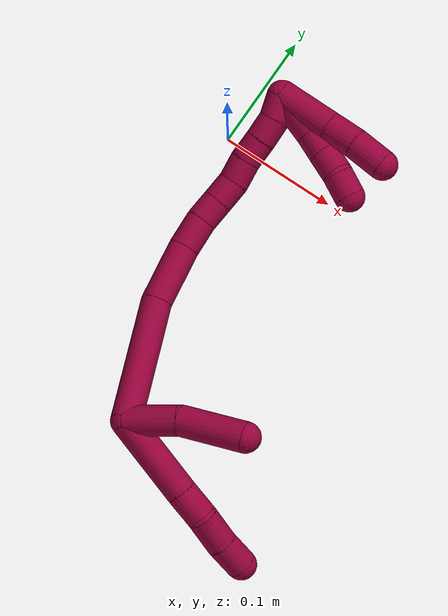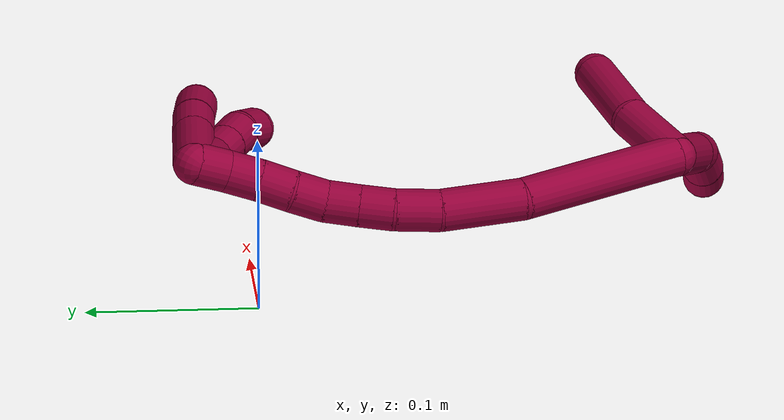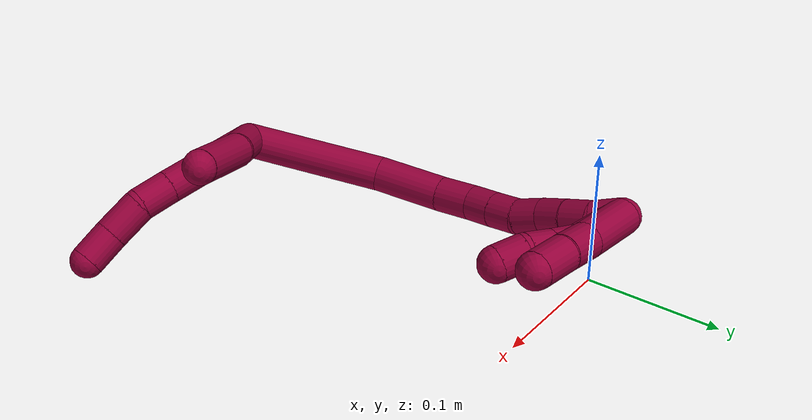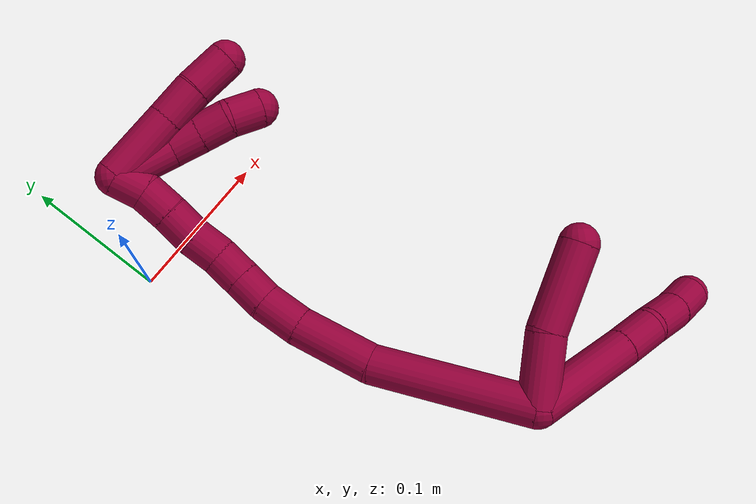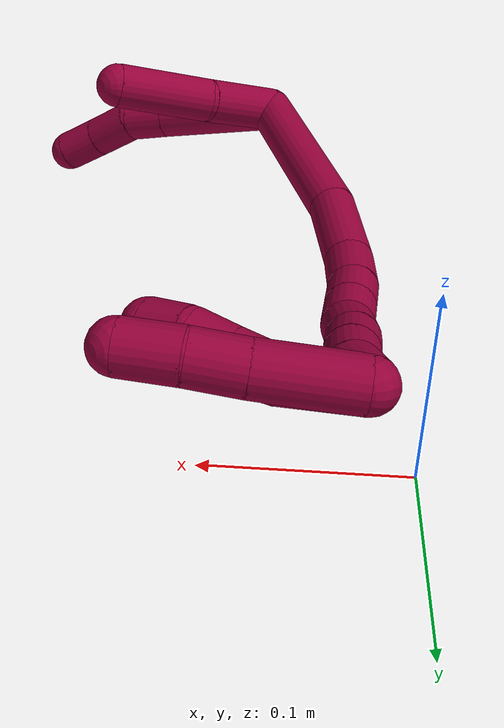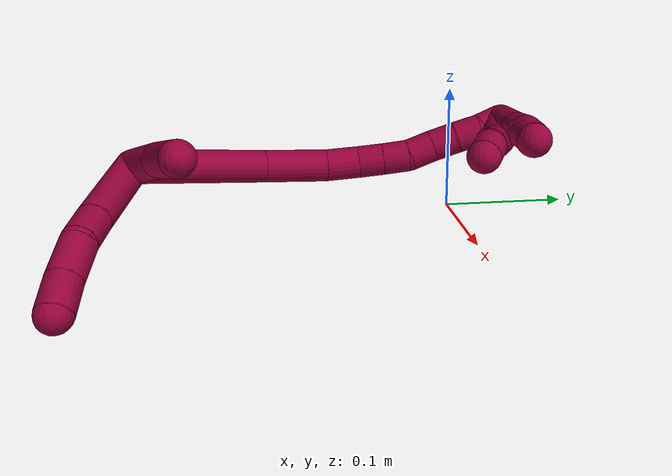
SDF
<sdf version="1.7">
 <world name="default">
  <model name="8">
   <static>0</static>
   <link name="8">
    <collision name="collision-cylinder-e_1_2_8">
     <pose>0.017869 -0.026325 0.015739 1.03195 0.527524 0.304003</pose>
     <geometry><cylinder><radius>0.0125</radius><length>0.070994</length></cylinder></geometry>
     <surface>
      <friction><ode><mu>1.16</mu><mu2>1.16</mu2><slip1>0</slip1><slip2>0</slip2></ode></friction>
      <contact><ode><kp>1e+06</kp><kd>1</kd><max_vel>0</max_vel><min_depth>0.001</min_depth></ode></contact>
     </surface>
    </collision>
    <visual name="visual-cylinder-e_1_2_8">
     <pose>0.017869 -0.026325 0.015739 1.03195 0.527524 0.304003</pose>
     <geometry><cylinder><radius>0.0125</radius><length>0.070994</length></cylinder></geometry>
     <material><ambient>0.584314 0 0.227451 1</ambient></material>
    </visual>
    <collision name="collision-cylinder-e_2_8_9">
     <pose>0.042113 -0.061699 0.037328 0.996856 0.534251 0.295719</pose>
     <geometry><cylinder><radius>0.0125</radius><length>0.025038</length></cylinder></geometry>
     <surface>
      <friction><ode><mu>1.16</mu><mu2>1.16</mu2><slip1>0</slip1><slip2>0</slip2></ode></friction>
      <contact><ode><kp>1e+06</kp><kd>1</kd><max_vel>0</max_vel><min_depth>0.001</min_depth></ode></contact>
     </surface>
    </collision>
    <visual name="visual-cylinder-e_2_8_9">
     <pose>0.042113 -0.061699 0.037328 0.996856 0.534251 0.295719</pose>
     <geometry><cylinder><radius>0.0125</radius><length>0.025038</length></cylinder></geometry>
     <material><ambient>0.584314 0 0.227451 1</ambient></material>
    </visual>
    <collision name="collision-cylinder-e_3_9_10">
     <pose>0.059436 -0.078879 0.047786 1.05525 0.864153 0.525033</pose>
     <geometry><cylinder><radius>0.0125</radius><length>0.028792</length></cylinder></geometry>
     <surface>
      <friction><ode><mu>1.16</mu><mu2>1.16</mu2><slip1>0</slip1><slip2>0</slip2></ode></friction>
      <contact><ode><kp>1e+06</kp><kd>1</kd><max_vel>0</max_vel><min_depth>0.001</min_depth></ode></contact>
     </surface>
    </collision>
    <visual name="visual-cylinder-e_3_9_10">
     <pose>0.059436 -0.078879 0.047786 1.05525 0.864153 0.525033</pose>
     <geometry><cylinder><radius>0.0125</radius><length>0.028792</length></cylinder></geometry>
     <material><ambient>0.584314 0 0.227451 1</ambient></material>
    </visual>
    <collision name="collision-cylinder-e_4_10_6">
     <pose>0.079718 -0.093622 0.057652 0.89888 0.835194 0.421682</pose>
     <geometry><cylinder><radius>0.0125</radius><length>0.025176</length></cylinder></geometry>
     <surface>
      <friction><ode><mu>1.16</mu><mu2>1.16</mu2><slip1>0</slip1><slip2>0</slip2></ode></friction>
      <contact><ode><kp>1e+06</kp><kd>1</kd><max_vel>0</max_vel><min_depth>0.001</min_depth></ode></contact>
     </surface>
    </collision>
    <visual name="visual-cylinder-e_4_10_6">
     <pose>0.079718 -0.093622 0.057652 0.89888 0.835194 0.421682</pose>
     <geometry><cylinder><radius>0.0125</radius><length>0.025176</length></cylinder></geometry>
     <material><ambient>0.584314 0 0.227451 1</ambient></material>
    </visual>
    <collision name="collision-cylinder-e_1_2_11">
     <pose>-0.001824 -0.00465 0.02188 0.209393 -0.081367 -0.008555</pose>
     <geometry><cylinder><radius>0.0125</radius><length>0.044885</length></cylinder></geometry>
     <surface>
      <friction><ode><mu>1.16</mu><mu2>1.16</mu2><slip1>0</slip1><slip2>0</slip2></ode></friction>
      <contact><ode><kp>1e+06</kp><kd>1</kd><max_vel>0</max_vel><min_depth>0.001</min_depth></ode></contact>
     </surface>
    </collision>
    <visual name="visual-cylinder-e_1_2_11">
     <pose>-0.001824 -0.00465 0.02188 0.209393 -0.081367 -0.008555</pose>
     <geometry><cylinder><radius>0.0125</radius><length>0.044885</length></cylinder></geometry>
     <material><ambient>0.584314 0 0.227451 1</ambient></material>
    </visual>
    <collision name="collision-cylinder-e_2_11_5">
     <pose>-0.003314 -0.021008 0.068704 0.438853 0.012132 0.002706</pose>
     <geometry><cylinder><radius>0.0125</radius><length>0.055115</length></cylinder></geometry>
     <surface>
      <friction><ode><mu>1.16</mu><mu2>1.16</mu2><slip1>0</slip1><slip2>0</slip2></ode></friction>
      <contact><ode><kp>1e+06</kp><kd>1</kd><max_vel>0</max_vel><min_depth>0.001</min_depth></ode></contact>
     </surface>
    </collision>
    <visual name="visual-cylinder-e_2_11_5">
     <pose>-0.003314 -0.021008 0.068704 0.438853 0.012132 0.002706</pose>
     <geometry><cylinder><radius>0.0125</radius><length>0.055115</length></cylinder></geometry>
     <material><ambient>0.584314 0 0.227451 1</ambient></material>
    </visual>
    <collision name="collision-cylinder-e_1_2_12">
     <pose>-0.000186 0.048476 0.016321 -1.24603 -0.003628 0.002606</pose>
     <geometry><cylinder><radius>0.0125</radius><length>0.102301</length></cylinder></geometry>
     <surface>
      <friction><ode><mu>1.16</mu><mu2>1.16</mu2><slip1>0</slip1><slip2>0</slip2></ode></friction>
      <contact><ode><kp>1e+06</kp><kd>1</kd><max_vel>0</max_vel><min_depth>0.001</min_depth></ode></contact>
     </surface>
    </collision>
    <visual name="visual-cylinder-e_1_2_12">
     <pose>-0.000186 0.048476 0.016321 -1.24603 -0.003628 0.002606</pose>
     <geometry><cylinder><radius>0.0125</radius><length>0.102301</length></cylinder></geometry>
     <material><ambient>0.584314 0 0.227451 1</ambient></material>
    </visual>
    <collision name="collision-cylinder-e_2_12_13">
     <pose>-0.000556 0.11829 0.045721 -1.02093 -0.007404 0.004146</pose>
     <geometry><cylinder><radius>0.0125</radius><length>0.050054</length></cylinder></geometry>
     <surface>
      <friction><ode><mu>1.16</mu><mu2>1.16</mu2><slip1>0</slip1><slip2>0</slip2></ode></friction>
      <contact><ode><kp>1e+06</kp><kd>1</kd><max_vel>0</max_vel><min_depth>0.001</min_depth></ode></contact>
     </surface>
    </collision>
    <visual name="visual-cylinder-e_2_12_13">
     <pose>-0.000556 0.11829 0.045721 -1.02093 -0.007404 0.004146</pose>
     <geometry><cylinder><radius>0.0125</radius><length>0.050054</length></cylinder></geometry>
     <material><ambient>0.584314 0 0.227451 1</ambient></material>
    </visual>
    <collision name="collision-cylinder-e_3_13_14">
     <pose>-0.002008 0.149856 0.06731 -0.876796 -0.094844 0.044491</pose>
     <geometry><cylinder><radius>0.0125</radius><length>0.026732</length></cylinder></geometry>
     <surface>
      <friction><ode><mu>1.16</mu><mu2>1.16</mu2><slip1>0</slip1><slip2>0</slip2></ode></friction>
      <contact><ode><kp>1e+06</kp><kd>1</kd><max_vel>0</max_vel><min_depth>0.001</min_depth></ode></contact>
     </surface>
    </collision>
    <visual name="visual-cylinder-e_3_13_14">
     <pose>-0.002008 0.149856 0.06731 -0.876796 -0.094844 0.044491</pose>
     <geometry><cylinder><radius>0.0125</radius><length>0.026732</length></cylinder></geometry>
     <material><ambient>0.584314 0 0.227451 1</ambient></material>
    </visual>
    <collision name="collision-cylinder-e_4_14_15">
     <pose>-0.004367 0.166642 0.083361 -0.715782 -0.109011 0.040804</pose>
     <geometry><cylinder><radius>0.0125</radius><length>0.020104</length></cylinder></geometry>
     <surface>
      <friction><ode><mu>1.16</mu><mu2>1.16</mu2><slip1>0</slip1><slip2>0</slip2></ode></friction>
      <contact><ode><kp>1e+06</kp><kd>1</kd><max_vel>0</max_vel><min_depth>0.001</min_depth></ode></contact>
     </surface>
    </collision>
    <visual name="visual-cylinder-e_4_14_15">
     <pose>-0.004367 0.166642 0.083361 -0.715782 -0.109011 0.040804</pose>
     <geometry><cylinder><radius>0.0125</radius><length>0.020104</length></cylinder></geometry>
     <material><ambient>0.584314 0 0.227451 1</ambient></material>
    </visual>
    <collision name="collision-cylinder-e_5_15_16">
     <pose>-0.006788 0.179807 0.098542 -0.713012 -0.130674 0.048725</pose>
     <geometry><cylinder><radius>0.0125</radius><length>0.020378</length></cylinder></geometry>
     <surface>
      <friction><ode><mu>1.16</mu><mu2>1.16</mu2><slip1>0</slip1><slip2>0</slip2></ode></friction>
      <contact><ode><kp>1e+06</kp><kd>1</kd><max_vel>0</max_vel><min_depth>0.001</min_depth></ode></contact>
     </surface>
    </collision>
    <visual name="visual-cylinder-e_5_15_16">
     <pose>-0.006788 0.179807 0.098542 -0.713012 -0.130674 0.048725</pose>
     <geometry><cylinder><radius>0.0125</radius><length>0.020378</length></cylinder></geometry>
     <material><ambient>0.584314 0 0.227451 1</ambient></material>
    </visual>
    <collision name="collision-cylinder-e_6_16_17">
     <pose>-0.011859 0.19331 0.112679 -0.815188 -0.376261 0.164035</pose>
     <geometry><cylinder><radius>0.0125</radius><length>0.020371</length></cylinder></geometry>
     <surface>
      <friction><ode><mu>1.16</mu><mu2>1.16</mu2><slip1>0</slip1><slip2>0</slip2></ode></friction>
      <contact><ode><kp>1e+06</kp><kd>1</kd><max_vel>0</max_vel><min_depth>0.001</min_depth></ode></contact>
     </surface>
    </collision>
    <visual name="visual-cylinder-e_6_16_17">
     <pose>-0.011859 0.19331 0.112679 -0.815188 -0.376261 0.164035</pose>
     <geometry><cylinder><radius>0.0125</radius><length>0.020371</length></cylinder></geometry>
     <material><ambient>0.584314 0 0.227451 1</ambient></material>
    </visual>
    <collision name="collision-cylinder-e_7_17_18">
     <pose>-0.018819 0.20609 0.126601 -0.670213 -0.327375 0.114908</pose>
     <geometry><cylinder><radius>0.0125</radius><length>0.020013</length></cylinder></geometry>
     <surface>
      <friction><ode><mu>1.16</mu><mu2>1.16</mu2><slip1>0</slip1><slip2>0</slip2></ode></friction>
      <contact><ode><kp>1e+06</kp><kd>1</kd><max_vel>0</max_vel><min_depth>0.001</min_depth></ode></contact>
     </surface>
    </collision>
    <visual name="visual-cylinder-e_7_17_18">
     <pose>-0.018819 0.20609 0.126601 -0.670213 -0.327375 0.114908</pose>
     <geometry><cylinder><radius>0.0125</radius><length>0.020013</length></cylinder></geometry>
     <material><ambient>0.584314 0 0.227451 1</ambient></material>
    </visual>
    <collision name="collision-cylinder-e_8_18_19">
     <pose>-0.025081 0.218397 0.141077 -0.738731 -0.308984 0.120433</pose>
     <geometry><cylinder><radius>0.0125</radius><length>0.02002</length></cylinder></geometry>
     <surface>
      <friction><ode><mu>1.16</mu><mu2>1.16</mu2><slip1>0</slip1><slip2>0</slip2></ode></friction>
      <contact><ode><kp>1e+06</kp><kd>1</kd><max_vel>0</max_vel><min_depth>0.001</min_depth></ode></contact>
     </surface>
    </collision>
    <visual name="visual-cylinder-e_8_18_19">
     <pose>-0.025081 0.218397 0.141077 -0.738731 -0.308984 0.120433</pose>
     <geometry><cylinder><radius>0.0125</radius><length>0.02002</length></cylinder></geometry>
     <material><ambient>0.584314 0 0.227451 1</ambient></material>
    </visual>
    <collision name="collision-cylinder-e_9_19_1">
     <pose>-0.032114 0.232581 0.153032 -1.00727 -0.409793 0.228029</pose>
     <geometry><cylinder><radius>0.0125</radius><length>0.020025</length></cylinder></geometry>
     <surface>
      <friction><ode><mu>1.16</mu><mu2>1.16</mu2><slip1>0</slip1><slip2>0</slip2></ode></friction>
      <contact><ode><kp>1e+06</kp><kd>1</kd><max_vel>0</max_vel><min_depth>0.001</min_depth></ode></contact>
     </surface>
    </collision>
    <visual name="visual-cylinder-e_9_19_1">
     <pose>-0.032114 0.232581 0.153032 -1.00727 -0.409793 0.228029</pose>
     <geometry><cylinder><radius>0.0125</radius><length>0.020025</length></cylinder></geometry>
     <material><ambient>0.584314 0 0.227451 1</ambient></material>
    </visual>
    <collision name="collision-cylinder-e_1_1_20">
     <pose>-0.031303 0.224789 0.174727 0.747314 0.20673 0.081299</pose>
     <geometry><cylinder><radius>0.0125</radius><length>0.046772</length></cylinder></geometry>
     <surface>
      <friction><ode><mu>1.16</mu><mu2>1.16</mu2><slip1>0</slip1><slip2>0</slip2></ode></friction>
      <contact><ode><kp>1e+06</kp><kd>1</kd><max_vel>0</max_vel><min_depth>0.001</min_depth></ode></contact>
     </surface>
    </collision>
    <visual name="visual-cylinder-e_1_1_20">
     <pose>-0.031303 0.224789 0.174727 0.747314 0.20673 0.081299</pose>
     <geometry><cylinder><radius>0.0125</radius><length>0.046772</length></cylinder></geometry>
     <material><ambient>0.584314 0 0.227451 1</ambient></material>
    </visual>
    <collision name="collision-cylinder-e_2_20_21">
     <pose>-0.024484 0.200546 0.200629 0.761415 0.159011 0.063754</pose>
     <geometry><cylinder><radius>0.0125</radius><length>0.025503</length></cylinder></geometry>
     <surface>
      <friction><ode><mu>1.16</mu><mu2>1.16</mu2><slip1>0</slip1><slip2>0</slip2></ode></friction>
      <contact><ode><kp>1e+06</kp><kd>1</kd><max_vel>0</max_vel><min_depth>0.001</min_depth></ode></contact>
     </surface>
    </collision>
    <visual name="visual-cylinder-e_2_20_21">
     <pose>-0.024484 0.200546 0.200629 0.761415 0.159011 0.063754</pose>
     <geometry><cylinder><radius>0.0125</radius><length>0.025503</length></cylinder></geometry>
     <material><ambient>0.584314 0 0.227451 1</ambient></material>
    </visual>
    <collision name="collision-cylinder-e_3_21_4">
     <pose>-0.018909 0.182049 0.21887 0.82143 0.259377 0.11347</pose>
     <geometry><cylinder><radius>0.0125</radius><length>0.027726</length></cylinder></geometry>
     <surface>
      <friction><ode><mu>1.16</mu><mu2>1.16</mu2><slip1>0</slip1><slip2>0</slip2></ode></friction>
      <contact><ode><kp>1e+06</kp><kd>1</kd><max_vel>0</max_vel><min_depth>0.001</min_depth></ode></contact>
     </surface>
    </collision>
    <visual name="visual-cylinder-e_3_21_4">
     <pose>-0.018909 0.182049 0.21887 0.82143 0.259377 0.11347</pose>
     <geometry><cylinder><radius>0.0125</radius><length>0.027726</length></cylinder></geometry>
     <material><ambient>0.584314 0 0.227451 1</ambient></material>
    </visual>
    <collision name="collision-cylinder-e_1_1_22">
     <pose>-0.02754 0.225357 0.166496 1.05196 0.460563 0.270536</pose>
     <geometry><cylinder><radius>0.0125</radius><length>0.038533</length></cylinder></geometry>
     <surface>
      <friction><ode><mu>1.16</mu><mu2>1.16</mu2><slip1>0</slip1><slip2>0</slip2></ode></friction>
      <contact><ode><kp>1e+06</kp><kd>1</kd><max_vel>0</max_vel><min_depth>0.001</min_depth></ode></contact>
     </surface>
    </collision>
    <visual name="visual-cylinder-e_1_1_22">
     <pose>-0.02754 0.225357 0.166496 1.05196 0.460563 0.270536</pose>
     <geometry><cylinder><radius>0.0125</radius><length>0.038533</length></cylinder></geometry>
     <material><ambient>0.584314 0 0.227451 1</ambient></material>
    </visual>
    <collision name="collision-cylinder-e_2_22_23">
     <pose>-0.017307 0.200912 0.179127 1.16417 0.160774 0.105943</pose>
     <geometry><cylinder><radius>0.0125</radius><length>0.020863</length></cylinder></geometry>
     <surface>
      <friction><ode><mu>1.16</mu><mu2>1.16</mu2><slip1>0</slip1><slip2>0</slip2></ode></friction>
      <contact><ode><kp>1e+06</kp><kd>1</kd><max_vel>0</max_vel><min_depth>0.001</min_depth></ode></contact>
     </surface>
    </collision>
    <visual name="visual-cylinder-e_2_22_23">
     <pose>-0.017307 0.200912 0.179127 1.16417 0.160774 0.105943</pose>
     <geometry><cylinder><radius>0.0125</radius><length>0.020863</length></cylinder></geometry>
     <material><ambient>0.584314 0 0.227451 1</ambient></material>
    </visual>
    <collision name="collision-cylinder-e_3_23_24">
     <pose>-0.014353 0.182287 0.187172 1.16193 0.127844 0.084001</pose>
     <geometry><cylinder><radius>0.0125</radius><length>0.020149</length></cylinder></geometry>
     <surface>
      <friction><ode><mu>1.16</mu><mu2>1.16</mu2><slip1>0</slip1><slip2>0</slip2></ode></friction>
      <contact><ode><kp>1e+06</kp><kd>1</kd><max_vel>0</max_vel><min_depth>0.001</min_depth></ode></contact>
     </surface>
    </collision>
    <visual name="visual-cylinder-e_3_23_24">
     <pose>-0.014353 0.182287 0.187172 1.16193 0.127844 0.084001</pose>
     <geometry><cylinder><radius>0.0125</radius><length>0.020149</length></cylinder></geometry>
     <material><ambient>0.584314 0 0.227451 1</ambient></material>
    </visual>
    <collision name="collision-cylinder-e_4_24_3">
     <pose>-0.008791 0.164367 0.194265 1.22834 0.431428 0.306603</pose>
     <geometry><cylinder><radius>0.0125</radius><length>0.020455</length></cylinder></geometry>
     <surface>
      <friction><ode><mu>1.16</mu><mu2>1.16</mu2><slip1>0</slip1><slip2>0</slip2></ode></friction>
      <contact><ode><kp>1e+06</kp><kd>1</kd><max_vel>0</max_vel><min_depth>0.001</min_depth></ode></contact>
     </surface>
    </collision>
    <visual name="visual-cylinder-e_4_24_3">
     <pose>-0.008791 0.164367 0.194265 1.22834 0.431428 0.306603</pose>
     <geometry><cylinder><radius>0.0125</radius><length>0.020455</length></cylinder></geometry>
     <material><ambient>0.584314 0 0.227451 1</ambient></material>
    </visual>
    <collision name="collision-sphere-3">
     <pose>-0.004514 0.155616 0.197384 0 -0 0</pose>
     <geometry><sphere><radius>0.0125</radius></sphere></geometry>
     <surface>
      <friction><ode><mu>1.16</mu><mu2>1.16</mu2><slip1>0</slip1><slip2>0</slip2></ode></friction>
      <contact><ode><kp>1e+06</kp><kd>1</kd><max_vel>0</max_vel><min_depth>0.001</min_depth></ode></contact>
     </surface>
    </collision>
    <visual name="visual-sphere-3">
     <pose>-0.004514 0.155616 0.197384 0 -0 0</pose>
     <geometry><sphere><radius>0.0125</radius></sphere></geometry>
     <material><ambient>0.584314 0 0.227451 1</ambient></material>
    </visual>
    <collision name="collision-sphere-24">
     <pose>-0.013068 0.173118 0.191145 0 -0 0</pose>
     <geometry><sphere><radius>0.0125</radius></sphere></geometry>
     <surface>
      <friction><ode><mu>1.16</mu><mu2>1.16</mu2><slip1>0</slip1><slip2>0</slip2></ode></friction>
      <contact><ode><kp>1e+06</kp><kd>1</kd><max_vel>0</max_vel><min_depth>0.001</min_depth></ode></contact>
     </surface>
    </collision>
    <visual name="visual-sphere-24">
     <pose>-0.013068 0.173118 0.191145 0 -0 0</pose>
     <geometry><sphere><radius>0.0125</radius></sphere></geometry>
     <material><ambient>0.584314 0 0.227451 1</ambient></material>
    </visual>
    <collision name="collision-sphere-23">
     <pose>-0.015637 0.191455 0.1832 0 -0 0</pose>
     <geometry><sphere><radius>0.0125</radius></sphere></geometry>
     <surface>
      <friction><ode><mu>1.16</mu><mu2>1.16</mu2><slip1>0</slip1><slip2>0</slip2></ode></friction>
      <contact><ode><kp>1e+06</kp><kd>1</kd><max_vel>0</max_vel><min_depth>0.001</min_depth></ode></contact>
     </surface>
    </collision>
    <visual name="visual-sphere-23">
     <pose>-0.015637 0.191455 0.1832 0 -0 0</pose>
     <geometry><sphere><radius>0.0125</radius></sphere></geometry>
     <material><ambient>0.584314 0 0.227451 1</ambient></material>
    </visual>
    <collision name="collision-sphere-22">
     <pose>-0.018977 0.21037 0.175055 0 -0 0</pose>
     <geometry><sphere><radius>0.0125</radius></sphere></geometry>
     <surface>
      <friction><ode><mu>1.16</mu><mu2>1.16</mu2><slip1>0</slip1><slip2>0</slip2></ode></friction>
      <contact><ode><kp>1e+06</kp><kd>1</kd><max_vel>0</max_vel><min_depth>0.001</min_depth></ode></contact>
     </surface>
    </collision>
    <visual name="visual-sphere-22">
     <pose>-0.018977 0.21037 0.175055 0 -0 0</pose>
     <geometry><sphere><radius>0.0125</radius></sphere></geometry>
     <material><ambient>0.584314 0 0.227451 1</ambient></material>
    </visual>
    <collision name="collision-sphere-4">
     <pose>-0.015353 0.172239 0.227997 0 -0 0</pose>
     <geometry><sphere><radius>0.0125</radius></sphere></geometry>
     <surface>
      <friction><ode><mu>1.16</mu><mu2>1.16</mu2><slip1>0</slip1><slip2>0</slip2></ode></friction>
      <contact><ode><kp>1e+06</kp><kd>1</kd><max_vel>0</max_vel><min_depth>0.001</min_depth></ode></contact>
     </surface>
    </collision>
    <visual name="visual-sphere-4">
     <pose>-0.015353 0.172239 0.227997 0 -0 0</pose>
     <geometry><sphere><radius>0.0125</radius></sphere></geometry>
     <material><ambient>0.584314 0 0.227451 1</ambient></material>
    </visual>
    <collision name="collision-sphere-21">
     <pose>-0.022464 0.191859 0.209743 0 -0 0</pose>
     <geometry><sphere><radius>0.0125</radius></sphere></geometry>
     <surface>
      <friction><ode><mu>1.16</mu><mu2>1.16</mu2><slip1>0</slip1><slip2>0</slip2></ode></friction>
      <contact><ode><kp>1e+06</kp><kd>1</kd><max_vel>0</max_vel><min_depth>0.001</min_depth></ode></contact>
     </surface>
    </collision>
    <visual name="visual-sphere-21">
     <pose>-0.022464 0.191859 0.209743 0 -0 0</pose>
     <geometry><sphere><radius>0.0125</radius></sphere></geometry>
     <material><ambient>0.584314 0 0.227451 1</ambient></material>
    </visual>
    <collision name="collision-sphere-20">
     <pose>-0.026503 0.209232 0.191515 0 -0 0</pose>
     <geometry><sphere><radius>0.0125</radius></sphere></geometry>
     <surface>
      <friction><ode><mu>1.16</mu><mu2>1.16</mu2><slip1>0</slip1><slip2>0</slip2></ode></friction>
      <contact><ode><kp>1e+06</kp><kd>1</kd><max_vel>0</max_vel><min_depth>0.001</min_depth></ode></contact>
     </surface>
    </collision>
    <visual name="visual-sphere-20">
     <pose>-0.026503 0.209232 0.191515 0 -0 0</pose>
     <geometry><sphere><radius>0.0125</radius></sphere></geometry>
     <material><ambient>0.584314 0 0.227451 1</ambient></material>
    </visual>
    <collision name="collision-sphere-11">
     <pose>-0.003648 -0.009299 0.04376 0 -0 0</pose>
     <geometry><sphere><radius>0.0125</radius></sphere></geometry>
     <surface>
      <friction><ode><mu>1.16</mu><mu2>1.16</mu2><slip1>0</slip1><slip2>0</slip2></ode></friction>
      <contact><ode><kp>1e+06</kp><kd>1</kd><max_vel>0</max_vel><min_depth>0.001</min_depth></ode></contact>
     </surface>
    </collision>
    <visual name="visual-sphere-11">
     <pose>-0.003648 -0.009299 0.04376 0 -0 0</pose>
     <geometry><sphere><radius>0.0125</radius></sphere></geometry>
     <material><ambient>0.584314 0 0.227451 1</ambient></material>
    </visual>
    <collision name="collision-sphere-6">
     <pose>0.089051 -0.100233 0.06291 0 -0 0</pose>
     <geometry><sphere><radius>0.0125</radius></sphere></geometry>
     <surface>
      <friction><ode><mu>1.16</mu><mu2>1.16</mu2><slip1>0</slip1><slip2>0</slip2></ode></friction>
      <contact><ode><kp>1e+06</kp><kd>1</kd><max_vel>0</max_vel><min_depth>0.001</min_depth></ode></contact>
     </surface>
    </collision>
    <visual name="visual-sphere-6">
     <pose>0.089051 -0.100233 0.06291 0 -0 0</pose>
     <geometry><sphere><radius>0.0125</radius></sphere></geometry>
     <material><ambient>0.584314 0 0.227451 1</ambient></material>
    </visual>
    <collision name="collision-sphere-10">
     <pose>0.070385 -0.087011 0.052394 0 -0 0</pose>
     <geometry><sphere><radius>0.0125</radius></sphere></geometry>
     <surface>
      <friction><ode><mu>1.16</mu><mu2>1.16</mu2><slip1>0</slip1><slip2>0</slip2></ode></friction>
      <contact><ode><kp>1e+06</kp><kd>1</kd><max_vel>0</max_vel><min_depth>0.001</min_depth></ode></contact>
     </surface>
    </collision>
    <visual name="visual-sphere-10">
     <pose>0.070385 -0.087011 0.052394 0 -0 0</pose>
     <geometry><sphere><radius>0.0125</radius></sphere></geometry>
     <material><ambient>0.584314 0 0.227451 1</ambient></material>
    </visual>
    <collision name="collision-sphere-9">
     <pose>0.048487 -0.070747 0.043178 0 -0 0</pose>
     <geometry><sphere><radius>0.0125</radius></sphere></geometry>
     <surface>
      <friction><ode><mu>1.16</mu><mu2>1.16</mu2><slip1>0</slip1><slip2>0</slip2></ode></friction>
      <contact><ode><kp>1e+06</kp><kd>1</kd><max_vel>0</max_vel><min_depth>0.001</min_depth></ode></contact>
     </surface>
    </collision>
    <visual name="visual-sphere-9">
     <pose>0.048487 -0.070747 0.043178 0 -0 0</pose>
     <geometry><sphere><radius>0.0125</radius></sphere></geometry>
     <material><ambient>0.584314 0 0.227451 1</ambient></material>
    </visual>
    <collision name="collision-sphere-2">
     <geometry><sphere><radius>0.0125</radius></sphere></geometry>
     <surface>
      <friction><ode><mu>1.16</mu><mu2>1.16</mu2><slip1>0</slip1><slip2>0</slip2></ode></friction>
      <contact><ode><kp>1e+06</kp><kd>1</kd><max_vel>0</max_vel><min_depth>0.001</min_depth></ode></contact>
     </surface>
    </collision>
    <visual name="visual-sphere-2">
     <geometry><sphere><radius>0.0125</radius></sphere></geometry>
     <material><ambient>0.584314 0 0.227451 1</ambient></material>
    </visual>
    <collision name="collision-sphere-19">
     <pose>-0.028125 0.224818 0.148127 0 -0 0</pose>
     <geometry><sphere><radius>0.0125</radius></sphere></geometry>
     <surface>
      <friction><ode><mu>1.16</mu><mu2>1.16</mu2><slip1>0</slip1><slip2>0</slip2></ode></friction>
      <contact><ode><kp>1e+06</kp><kd>1</kd><max_vel>0</max_vel><min_depth>0.001</min_depth></ode></contact>
     </surface>
    </collision>
    <visual name="visual-sphere-19">
     <pose>-0.028125 0.224818 0.148127 0 -0 0</pose>
     <geometry><sphere><radius>0.0125</radius></sphere></geometry>
     <material><ambient>0.584314 0 0.227451 1</ambient></material>
    </visual>
    <collision name="collision-sphere-8">
     <pose>0.035738 -0.052651 0.031478 0 -0 0</pose>
     <geometry><sphere><radius>0.0125</radius></sphere></geometry>
     <surface>
      <friction><ode><mu>1.16</mu><mu2>1.16</mu2><slip1>0</slip1><slip2>0</slip2></ode></friction>
      <contact><ode><kp>1e+06</kp><kd>1</kd><max_vel>0</max_vel><min_depth>0.001</min_depth></ode></contact>
     </surface>
    </collision>
    <visual name="visual-sphere-8">
     <pose>0.035738 -0.052651 0.031478 0 -0 0</pose>
     <geometry><sphere><radius>0.0125</radius></sphere></geometry>
     <material><ambient>0.584314 0 0.227451 1</ambient></material>
    </visual>
    <collision name="collision-sphere-5">
     <pose>-0.002979 -0.032716 0.093648 0 -0 0</pose>
     <geometry><sphere><radius>0.0125</radius></sphere></geometry>
     <surface>
      <friction><ode><mu>1.16</mu><mu2>1.16</mu2><slip1>0</slip1><slip2>0</slip2></ode></friction>
      <contact><ode><kp>1e+06</kp><kd>1</kd><max_vel>0</max_vel><min_depth>0.001</min_depth></ode></contact>
     </surface>
    </collision>
    <visual name="visual-sphere-5">
     <pose>-0.002979 -0.032716 0.093648 0 -0 0</pose>
     <geometry><sphere><radius>0.0125</radius></sphere></geometry>
     <material><ambient>0.584314 0 0.227451 1</ambient></material>
    </visual>
    <collision name="collision-sphere-12">
     <pose>-0.000371 0.096953 0.032642 0 -0 0</pose>
     <geometry><sphere><radius>0.0125</radius></sphere></geometry>
     <surface>
      <friction><ode><mu>1.16</mu><mu2>1.16</mu2><slip1>0</slip1><slip2>0</slip2></ode></friction>
      <contact><ode><kp>1e+06</kp><kd>1</kd><max_vel>0</max_vel><min_depth>0.001</min_depth></ode></contact>
     </surface>
    </collision>
    <visual name="visual-sphere-12">
     <pose>-0.000371 0.096953 0.032642 0 -0 0</pose>
     <geometry><sphere><radius>0.0125</radius></sphere></geometry>
     <material><ambient>0.584314 0 0.227451 1</ambient></material>
    </visual>
    <collision name="collision-sphere-13">
     <pose>-0.000742 0.139628 0.058799 0 -0 0</pose>
     <geometry><sphere><radius>0.0125</radius></sphere></geometry>
     <surface>
      <friction><ode><mu>1.16</mu><mu2>1.16</mu2><slip1>0</slip1><slip2>0</slip2></ode></friction>
      <contact><ode><kp>1e+06</kp><kd>1</kd><max_vel>0</max_vel><min_depth>0.001</min_depth></ode></contact>
     </surface>
    </collision>
    <visual name="visual-sphere-13">
     <pose>-0.000742 0.139628 0.058799 0 -0 0</pose>
     <geometry><sphere><radius>0.0125</radius></sphere></geometry>
     <material><ambient>0.584314 0 0.227451 1</ambient></material>
    </visual>
    <collision name="collision-sphere-14">
     <pose>-0.003273 0.160084 0.07582 0 -0 0</pose>
     <geometry><sphere><radius>0.0125</radius></sphere></geometry>
     <surface>
      <friction><ode><mu>1.16</mu><mu2>1.16</mu2><slip1>0</slip1><slip2>0</slip2></ode></friction>
      <contact><ode><kp>1e+06</kp><kd>1</kd><max_vel>0</max_vel><min_depth>0.001</min_depth></ode></contact>
     </surface>
    </collision>
    <visual name="visual-sphere-14">
     <pose>-0.003273 0.160084 0.07582 0 -0 0</pose>
     <geometry><sphere><radius>0.0125</radius></sphere></geometry>
     <material><ambient>0.584314 0 0.227451 1</ambient></material>
    </visual>
    <collision name="collision-sphere-15">
     <pose>-0.005461 0.173199 0.090901 0 -0 0</pose>
     <geometry><sphere><radius>0.0125</radius></sphere></geometry>
     <surface>
      <friction><ode><mu>1.16</mu><mu2>1.16</mu2><slip1>0</slip1><slip2>0</slip2></ode></friction>
      <contact><ode><kp>1e+06</kp><kd>1</kd><max_vel>0</max_vel><min_depth>0.001</min_depth></ode></contact>
     </surface>
    </collision>
    <visual name="visual-sphere-15">
     <pose>-0.005461 0.173199 0.090901 0 -0 0</pose>
     <geometry><sphere><radius>0.0125</radius></sphere></geometry>
     <material><ambient>0.584314 0 0.227451 1</ambient></material>
    </visual>
    <collision name="collision-sphere-16">
     <pose>-0.008116 0.186415 0.106183 0 -0 0</pose>
     <geometry><sphere><radius>0.0125</radius></sphere></geometry>
     <surface>
      <friction><ode><mu>1.16</mu><mu2>1.16</mu2><slip1>0</slip1><slip2>0</slip2></ode></friction>
      <contact><ode><kp>1e+06</kp><kd>1</kd><max_vel>0</max_vel><min_depth>0.001</min_depth></ode></contact>
     </surface>
    </collision>
    <visual name="visual-sphere-16">
     <pose>-0.008116 0.186415 0.106183 0 -0 0</pose>
     <geometry><sphere><radius>0.0125</radius></sphere></geometry>
     <material><ambient>0.584314 0 0.227451 1</ambient></material>
    </visual>
    <collision name="collision-sphere-17">
     <pose>-0.015601 0.200205 0.119175 0 -0 0</pose>
     <geometry><sphere><radius>0.0125</radius></sphere></geometry>
     <surface>
      <friction><ode><mu>1.16</mu><mu2>1.16</mu2><slip1>0</slip1><slip2>0</slip2></ode></friction>
      <contact><ode><kp>1e+06</kp><kd>1</kd><max_vel>0</max_vel><min_depth>0.001</min_depth></ode></contact>
     </surface>
    </collision>
    <visual name="visual-sphere-17">
     <pose>-0.015601 0.200205 0.119175 0 -0 0</pose>
     <geometry><sphere><radius>0.0125</radius></sphere></geometry>
     <material><ambient>0.584314 0 0.227451 1</ambient></material>
    </visual>
    <collision name="collision-sphere-18">
     <pose>-0.022037 0.211976 0.134026 0 -0 0</pose>
     <geometry><sphere><radius>0.0125</radius></sphere></geometry>
     <surface>
      <friction><ode><mu>1.16</mu><mu2>1.16</mu2><slip1>0</slip1><slip2>0</slip2></ode></friction>
      <contact><ode><kp>1e+06</kp><kd>1</kd><max_vel>0</max_vel><min_depth>0.001</min_depth></ode></contact>
     </surface>
    </collision>
    <visual name="visual-sphere-18">
     <pose>-0.022037 0.211976 0.134026 0 -0 0</pose>
     <geometry><sphere><radius>0.0125</radius></sphere></geometry>
     <material><ambient>0.584314 0 0.227451 1</ambient></material>
    </visual>
    <collision name="collision-sphere-1">
     <pose>-0.036103 0.240345 0.157938 0 -0 0</pose>
     <geometry><sphere><radius>0.0125</radius></sphere></geometry>
     <surface>
      <friction><ode><mu>1.16</mu><mu2>1.16</mu2><slip1>0</slip1><slip2>0</slip2></ode></friction>
      <contact><ode><kp>1e+06</kp><kd>1</kd><max_vel>0</max_vel><min_depth>0.001</min_depth></ode></contact>
     </surface>
    </collision>
    <visual name="visual-sphere-1">
     <pose>-0.036103 0.240345 0.157938 0 -0 0</pose>
     <geometry><sphere><radius>0.0125</radius></sphere></geometry>
     <material><ambient>0.584314 0 0.227451 1</ambient></material>
    </visual>
    <inertial>
     <pose>-0.00109 0.09356 0.089416 0 -0 0</pose>
     <mass>0.75</mass>
     <inertia>
      <ixx>0.000222</ixx>
      <ixy>0</ixy>
      <ixz>0</ixz>
      <iyy>0.000123</iyy>
      <iyz>0</iyz>
      <izz>-4.2e-05</izz>
     </inertia>
    </inertial>
   </link>
   <pose>0.074918 -0.2509 0.064658 -0.822741 1.27733 -0.108016</pose>
  </model>
 </world>
</sdf>
